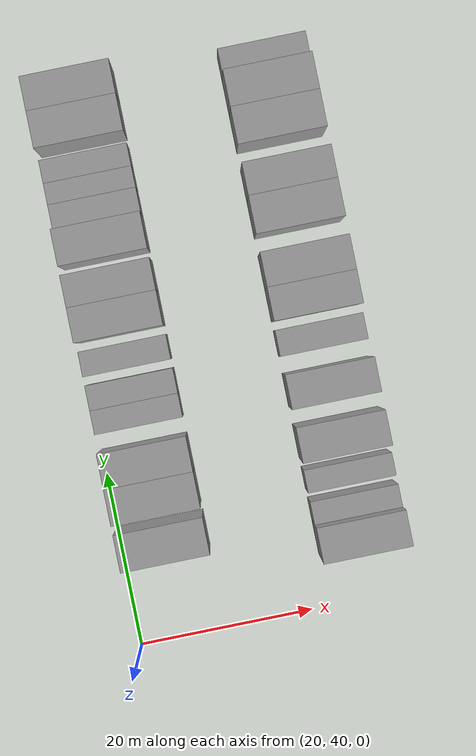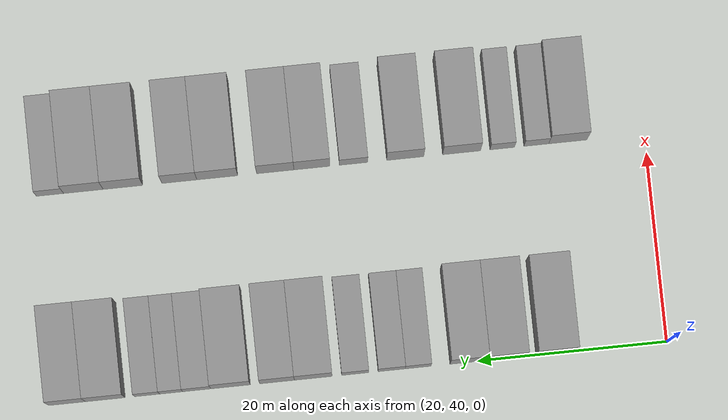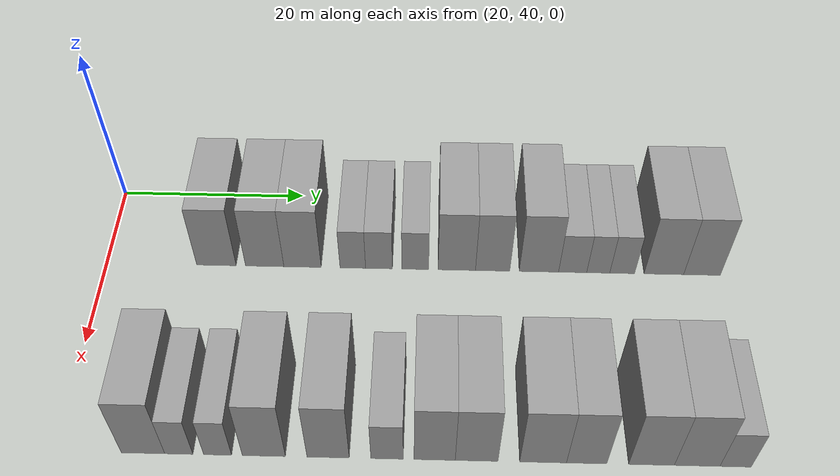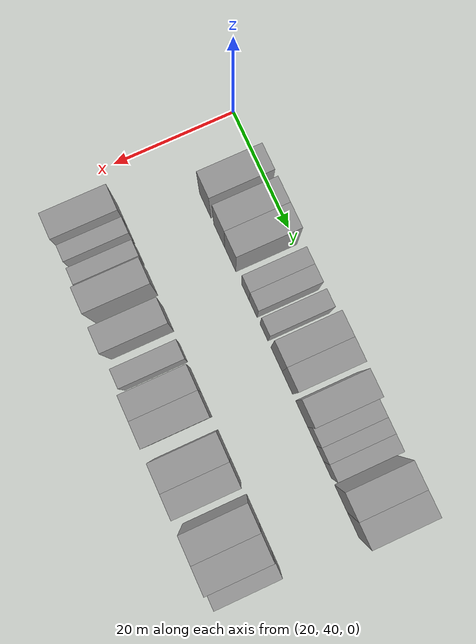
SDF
<sdf version="1.6">
 <world name="default">
  <model name="building_66">
   <static>1</static>
   <pose>25.0000 51.7370 0 0.000000 0.000000 0.000000</pose>
   <link name="link">
    <pose>0 0 4.50 0 0 0</pose>
    <collision name="collision"><geometry><box><size>10.0000 4.2055 9.0000</size></box></geometry></collision>
    <visual name="visual">
     <cast_shadows>0</cast_shadows>
     <geometry><box><size>10.0000 4.2055 9.0000</size></box></geometry>
     <material>
      <script>
       <uri>model://grey_wall/materials/scripts</uri>
       <uri>model://grey_wall/materials/textures</uri>
       <name>vrc/grey_wall</name>
      </script>
     </material>
    </visual>
   </link>
  </model>
  <model name="building_67">
   <static>1</static>
   <pose>25.0000 56.8810 0 0.000000 0.000000 0.000000</pose>
   <link name="link">
    <pose>0 0 4.50 0 0 0</pose>
    <collision name="collision"><geometry><box><size>10.0000 4.0826 9.0000</size></box></geometry></collision>
    <visual name="visual">
     <cast_shadows>0</cast_shadows>
     <geometry><box><size>10.0000 4.0826 9.0000</size></box></geometry>
     <material>
      <script>
       <uri>model://grey_wall/materials/scripts</uri>
       <uri>model://grey_wall/materials/textures</uri>
       <name>vrc/grey_wall</name>
      </script>
     </material>
    </visual>
   </link>
  </model>
  <model name="building_68">
   <static>1</static>
   <pose>25.0000 60.9062 0 0.000000 0.000000 0.000000</pose>
   <link name="link">
    <pose>0 0 4.50 0 0 0</pose>
    <collision name="collision"><geometry><box><size>10.0000 3.9676 9.0000</size></box></geometry></collision>
    <visual name="visual">
     <cast_shadows>0</cast_shadows>
     <geometry><box><size>10.0000 3.9676 9.0000</size></box></geometry>
     <material>
      <script>
       <uri>model://grey_wall/materials/scripts</uri>
       <uri>model://grey_wall/materials/textures</uri>
       <name>vrc/grey_wall</name>
      </script>
     </material>
    </visual>
   </link>
  </model>
  <model name="building_69">
   <static>1</static>
   <pose>25.0000 66.2493 0 0.000000 0.000000 0.000000</pose>
   <link name="link">
    <pose>0 0 3.00 0 0 0</pose>
    <collision name="collision"><geometry><box><size>10.0000 2.7186 6.0000</size></box></geometry></collision>
    <visual name="visual">
     <cast_shadows>0</cast_shadows>
     <geometry><box><size>10.0000 2.7186 6.0000</size></box></geometry>
     <material>
      <script>
       <uri>model://grey_wall/materials/scripts</uri>
       <uri>model://grey_wall/materials/textures</uri>
       <name>vrc/grey_wall</name>
      </script>
     </material>
    </visual>
   </link>
  </model>
  <model name="building_70">
   <static>1</static>
   <pose>25.0000 69.0316 0 0.000000 0.000000 0.000000</pose>
   <link name="link">
    <pose>0 0 3.00 0 0 0</pose>
    <collision name="collision"><geometry><box><size>10.0000 2.8460 6.0000</size></box></geometry></collision>
    <visual name="visual">
     <cast_shadows>0</cast_shadows>
     <geometry><box><size>10.0000 2.8460 6.0000</size></box></geometry>
     <material>
      <script>
       <uri>model://grey_wall/materials/scripts</uri>
       <uri>model://grey_wall/materials/textures</uri>
       <name>vrc/grey_wall</name>
      </script>
     </material>
    </visual>
   </link>
  </model>
  <model name="building_71">
   <static>1</static>
   <pose>25.0000 72.8729 0 0.000000 0.000000 0.000000</pose>
   <link name="link">
    <pose>0 0 3.00 0 0 0</pose>
    <collision name="collision"><geometry><box><size>10.0000 2.8367 6.0000</size></box></geometry></collision>
    <visual name="visual">
     <cast_shadows>0</cast_shadows>
     <geometry><box><size>10.0000 2.8367 6.0000</size></box></geometry>
     <material>
      <script>
       <uri>model://grey_wall/materials/scripts</uri>
       <uri>model://grey_wall/materials/textures</uri>
       <name>vrc/grey_wall</name>
      </script>
     </material>
    </visual>
   </link>
  </model>
  <model name="building_72">
   <static>1</static>
   <pose>25.0000 77.2694 0 0.000000 0.000000 0.000000</pose>
   <link name="link">
    <pose>0 0 4.50 0 0 0</pose>
    <collision name="collision"><geometry><box><size>10.0000 3.9564 9.0000</size></box></geometry></collision>
    <visual name="visual">
     <cast_shadows>0</cast_shadows>
     <geometry><box><size>10.0000 3.9564 9.0000</size></box></geometry>
     <material>
      <script>
       <uri>model://grey_wall/materials/scripts</uri>
       <uri>model://grey_wall/materials/textures</uri>
       <name>vrc/grey_wall</name>
      </script>
     </material>
    </visual>
   </link>
  </model>
  <model name="building_73">
   <static>1</static>
   <pose>25.0000 81.0634 0 0.000000 0.000000 0.000000</pose>
   <link name="link">
    <pose>0 0 4.50 0 0 0</pose>
    <collision name="collision"><geometry><box><size>10.0000 3.6316 9.0000</size></box></geometry></collision>
    <visual name="visual">
     <cast_shadows>0</cast_shadows>
     <geometry><box><size>10.0000 3.6316 9.0000</size></box></geometry>
     <material>
      <script>
       <uri>model://grey_wall/materials/scripts</uri>
       <uri>model://grey_wall/materials/textures</uri>
       <name>vrc/grey_wall</name>
      </script>
     </material>
    </visual>
   </link>
  </model>
  <model name="building_74">
   <static>1</static>
   <pose>25.0000 85.9550 0 0.000000 0.000000 0.000000</pose>
   <link name="link">
    <pose>0 0 4.50 0 0 0</pose>
    <collision name="collision"><geometry><box><size>10.0000 4.1516 9.0000</size></box></geometry></collision>
    <visual name="visual">
     <cast_shadows>0</cast_shadows>
     <geometry><box><size>10.0000 4.1516 9.0000</size></box></geometry>
     <material>
      <script>
       <uri>model://grey_wall/materials/scripts</uri>
       <uri>model://grey_wall/materials/textures</uri>
       <name>vrc/grey_wall</name>
      </script>
     </material>
    </visual>
   </link>
  </model>
  <model name="building_75">
   <static>1</static>
   <pose>25.0000 89.5149 0 0.000000 0.000000 0.000000</pose>
   <link name="link">
    <pose>0 0 3.00 0 0 0</pose>
    <collision name="collision"><geometry><box><size>10.0000 2.9682 6.0000</size></box></geometry></collision>
    <visual name="visual">
     <cast_shadows>0</cast_shadows>
     <geometry><box><size>10.0000 2.9682 6.0000</size></box></geometry>
     <material>
      <script>
       <uri>model://grey_wall/materials/scripts</uri>
       <uri>model://grey_wall/materials/textures</uri>
       <name>vrc/grey_wall</name>
      </script>
     </material>
    </visual>
   </link>
  </model>
  <model name="building_76">
   <static>1</static>
   <pose>25.0000 92.2148 0 0.000000 0.000000 0.000000</pose>
   <link name="link">
    <pose>0 0 3.00 0 0 0</pose>
    <collision name="collision"><geometry><box><size>10.0000 2.4316 6.0000</size></box></geometry></collision>
    <visual name="visual">
     <cast_shadows>0</cast_shadows>
     <geometry><box><size>10.0000 2.4316 6.0000</size></box></geometry>
     <material>
      <script>
       <uri>model://grey_wall/materials/scripts</uri>
       <uri>model://grey_wall/materials/textures</uri>
       <name>vrc/grey_wall</name>
      </script>
     </material>
    </visual>
   </link>
  </model>
  <model name="building_77">
   <static>1</static>
   <pose>25.0000 94.7397 0 0.000000 0.000000 0.000000</pose>
   <link name="link">
    <pose>0 0 3.00 0 0 0</pose>
    <collision name="collision"><geometry><box><size>10.0000 2.6181 6.0000</size></box></geometry></collision>
    <visual name="visual">
     <cast_shadows>0</cast_shadows>
     <geometry><box><size>10.0000 2.6181 6.0000</size></box></geometry>
     <material>
      <script>
       <uri>model://grey_wall/materials/scripts</uri>
       <uri>model://grey_wall/materials/textures</uri>
       <name>vrc/grey_wall</name>
      </script>
     </material>
    </visual>
   </link>
  </model>
  <model name="building_78">
   <static>1</static>
   <pose>25.0000 99.1302 0 0.000000 0.000000 0.000000</pose>
   <link name="link">
    <pose>0 0 4.50 0 0 0</pose>
    <collision name="collision"><geometry><box><size>10.0000 4.1629 9.0000</size></box></geometry></collision>
    <visual name="visual">
     <cast_shadows>0</cast_shadows>
     <geometry><box><size>10.0000 4.1629 9.0000</size></box></geometry>
     <material>
      <script>
       <uri>model://grey_wall/materials/scripts</uri>
       <uri>model://grey_wall/materials/textures</uri>
       <name>vrc/grey_wall</name>
      </script>
     </material>
    </visual>
   </link>
  </model>
  <model name="building_79">
   <static>1</static>
   <pose>25.0000 103.1425 0 0.000000 0.000000 0.000000</pose>
   <link name="link">
    <pose>0 0 4.50 0 0 0</pose>
    <collision name="collision"><geometry><box><size>10.0000 3.8617 9.0000</size></box></geometry></collision>
    <visual name="visual">
     <cast_shadows>0</cast_shadows>
     <geometry><box><size>10.0000 3.8617 9.0000</size></box></geometry>
     <material>
      <script>
       <uri>model://grey_wall/materials/scripts</uri>
       <uri>model://grey_wall/materials/textures</uri>
       <name>vrc/grey_wall</name>
      </script>
     </material>
    </visual>
   </link>
  </model>
  <model name="building_171">
   <static>1</static>
   <pose>47.0000 48.1395 0 0.000000 0.000000 0.000000</pose>
   <link name="link">
    <pose>0 0 4.50 0 0 0</pose>
    <collision name="collision"><geometry><box><size>10.0000 4.0404 9.0000</size></box></geometry></collision>
    <visual name="visual">
     <cast_shadows>0</cast_shadows>
     <geometry><box><size>10.0000 4.0404 9.0000</size></box></geometry>
     <material>
      <script>
       <uri>model://grey_wall/materials/scripts</uri>
       <uri>model://grey_wall/materials/textures</uri>
       <name>vrc/grey_wall</name>
      </script>
     </material>
    </visual>
   </link>
  </model>
  <model name="building_172">
   <static>1</static>
   <pose>47.0000 51.4684 0 0.000000 0.000000 0.000000</pose>
   <link name="link">
    <pose>0 0 3.00 0 0 0</pose>
    <collision name="collision"><geometry><box><size>10.0000 2.6174 6.0000</size></box></geometry></collision>
    <visual name="visual">
     <cast_shadows>0</cast_shadows>
     <geometry><box><size>10.0000 2.6174 6.0000</size></box></geometry>
     <material>
      <script>
       <uri>model://grey_wall/materials/scripts</uri>
       <uri>model://grey_wall/materials/textures</uri>
       <name>vrc/grey_wall</name>
      </script>
     </material>
    </visual>
   </link>
  </model>
  <model name="building_173">
   <static>1</static>
   <pose>47.0000 55.0727 0 0.000000 0.000000 0.000000</pose>
   <link name="link">
    <pose>0 0 3.00 0 0 0</pose>
    <collision name="collision"><geometry><box><size>10.0000 2.5911 6.0000</size></box></geometry></collision>
    <visual name="visual">
     <cast_shadows>0</cast_shadows>
     <geometry><box><size>10.0000 2.5911 6.0000</size></box></geometry>
     <material>
      <script>
       <uri>model://grey_wall/materials/scripts</uri>
       <uri>model://grey_wall/materials/textures</uri>
       <name>vrc/grey_wall</name>
      </script>
     </material>
    </visual>
   </link>
  </model>
  <model name="building_174">
   <static>1</static>
   <pose>47.0000 59.3655 0 0.000000 0.000000 0.000000</pose>
   <link name="link">
    <pose>0 0 4.50 0 0 0</pose>
    <collision name="collision"><geometry><box><size>10.0000 3.9944 9.0000</size></box></geometry></collision>
    <visual name="visual">
     <cast_shadows>0</cast_shadows>
     <geometry><box><size>10.0000 3.9944 9.0000</size></box></geometry>
     <material>
      <script>
       <uri>model://grey_wall/materials/scripts</uri>
       <uri>model://grey_wall/materials/textures</uri>
       <name>vrc/grey_wall</name>
      </script>
     </material>
    </visual>
   </link>
  </model>
  <model name="building_175">
   <static>1</static>
   <pose>47.0000 65.3169 0 0.000000 0.000000 0.000000</pose>
   <link name="link">
    <pose>0 0 4.50 0 0 0</pose>
    <collision name="collision"><geometry><box><size>10.0000 3.9083 9.0000</size></box></geometry></collision>
    <visual name="visual">
     <cast_shadows>0</cast_shadows>
     <geometry><box><size>10.0000 3.9083 9.0000</size></box></geometry>
     <material>
      <script>
       <uri>model://grey_wall/materials/scripts</uri>
       <uri>model://grey_wall/materials/textures</uri>
       <name>vrc/grey_wall</name>
      </script>
     </material>
    </visual>
   </link>
  </model>
  <model name="building_176">
   <static>1</static>
   <pose>47.0000 70.7678 0 0.000000 0.000000 0.000000</pose>
   <link name="link">
    <pose>0 0 3.00 0 0 0</pose>
    <collision name="collision"><geometry><box><size>10.0000 2.9936 6.0000</size></box></geometry></collision>
    <visual name="visual">
     <cast_shadows>0</cast_shadows>
     <geometry><box><size>10.0000 2.9936 6.0000</size></box></geometry>
     <material>
      <script>
       <uri>model://grey_wall/materials/scripts</uri>
       <uri>model://grey_wall/materials/textures</uri>
       <name>vrc/grey_wall</name>
      </script>
     </material>
    </visual>
   </link>
  </model>
  <model name="building_177">
   <static>1</static>
   <pose>47.0000 75.1607 0 0.000000 0.000000 0.000000</pose>
   <link name="link">
    <pose>0 0 4.50 0 0 0</pose>
    <collision name="collision"><geometry><box><size>10.0000 3.7922 9.0000</size></box></geometry></collision>
    <visual name="visual">
     <cast_shadows>0</cast_shadows>
     <geometry><box><size>10.0000 3.7922 9.0000</size></box></geometry>
     <material>
      <script>
       <uri>model://grey_wall/materials/scripts</uri>
       <uri>model://grey_wall/materials/textures</uri>
       <name>vrc/grey_wall</name>
      </script>
     </material>
    </visual>
   </link>
  </model>
  <model name="building_178">
   <static>1</static>
   <pose>47.0000 79.0260 0 0.000000 0.000000 0.000000</pose>
   <link name="link">
    <pose>0 0 4.50 0 0 0</pose>
    <collision name="collision"><geometry><box><size>10.0000 3.9385 9.0000</size></box></geometry></collision>
    <visual name="visual">
     <cast_shadows>0</cast_shadows>
     <geometry><box><size>10.0000 3.9385 9.0000</size></box></geometry>
     <material>
      <script>
       <uri>model://grey_wall/materials/scripts</uri>
       <uri>model://grey_wall/materials/textures</uri>
       <name>vrc/grey_wall</name>
      </script>
     </material>
    </visual>
   </link>
  </model>
  <model name="building_179">
   <static>1</static>
   <pose>47.0000 85.1475 0 0.000000 0.000000 0.000000</pose>
   <link name="link">
    <pose>0 0 4.50 0 0 0</pose>
    <collision name="collision"><geometry><box><size>10.0000 4.3046 9.0000</size></box></geometry></collision>
    <visual name="visual">
     <cast_shadows>0</cast_shadows>
     <geometry><box><size>10.0000 4.3046 9.0000</size></box></geometry>
     <material>
      <script>
       <uri>model://grey_wall/materials/scripts</uri>
       <uri>model://grey_wall/materials/textures</uri>
       <name>vrc/grey_wall</name>
      </script>
     </material>
    </visual>
   </link>
  </model>
  <model name="building_180">
   <static>1</static>
   <pose>47.0000 89.1538 0 0.000000 0.000000 0.000000</pose>
   <link name="link">
    <pose>0 0 4.50 0 0 0</pose>
    <collision name="collision"><geometry><box><size>10.0000 3.7081 9.0000</size></box></geometry></collision>
    <visual name="visual">
     <cast_shadows>0</cast_shadows>
     <geometry><box><size>10.0000 3.7081 9.0000</size></box></geometry>
     <material>
      <script>
       <uri>model://grey_wall/materials/scripts</uri>
       <uri>model://grey_wall/materials/textures</uri>
       <name>vrc/grey_wall</name>
      </script>
     </material>
    </visual>
   </link>
  </model>
  <model name="building_181">
   <static>1</static>
   <pose>47.0000 95.1034 0 0.000000 0.000000 0.000000</pose>
   <link name="link">
    <pose>0 0 4.50 0 0 0</pose>
    <collision name="collision"><geometry><box><size>10.0000 4.1911 9.0000</size></box></geometry></collision>
    <visual name="visual">
     <cast_shadows>0</cast_shadows>
     <geometry><box><size>10.0000 4.1911 9.0000</size></box></geometry>
     <material>
      <script>
       <uri>model://grey_wall/materials/scripts</uri>
       <uri>model://grey_wall/materials/textures</uri>
       <name>vrc/grey_wall</name>
      </script>
     </material>
    </visual>
   </link>
  </model>
  <model name="building_182">
   <static>1</static>
   <pose>47.0000 99.2856 0 0.000000 0.000000 0.000000</pose>
   <link name="link">
    <pose>0 0 4.50 0 0 0</pose>
    <collision name="collision"><geometry><box><size>10.0000 4.1733 9.0000</size></box></geometry></collision>
    <visual name="visual">
     <cast_shadows>0</cast_shadows>
     <geometry><box><size>10.0000 4.1733 9.0000</size></box></geometry>
     <material>
      <script>
       <uri>model://grey_wall/materials/scripts</uri>
       <uri>model://grey_wall/materials/textures</uri>
       <name>vrc/grey_wall</name>
      </script>
     </material>
    </visual>
   </link>
  </model>
  <model name="building_183">
   <static>1</static>
   <pose>47.0000 102.8049 0 0.000000 0.000000 0.000000</pose>
   <link name="link">
    <pose>0 0 3.00 0 0 0</pose>
    <collision name="collision"><geometry><box><size>10.0000 2.8653 6.0000</size></box></geometry></collision>
    <visual name="visual">
     <cast_shadows>0</cast_shadows>
     <geometry><box><size>10.0000 2.8653 6.0000</size></box></geometry>
     <material>
      <script>
       <uri>model://grey_wall/materials/scripts</uri>
       <uri>model://grey_wall/materials/textures</uri>
       <name>vrc/grey_wall</name>
      </script>
     </material>
    </visual>
   </link>
  </model>
 </world>
</sdf>
